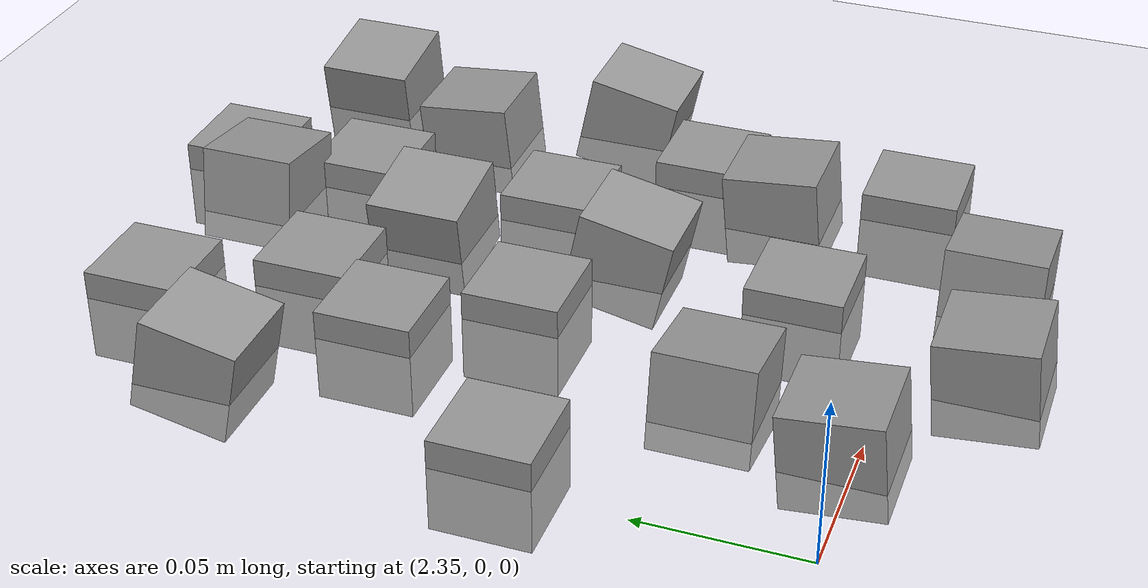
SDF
<sdf version="1.7">
 <world name="default">
  <model name="ground_plane">
   <static>1</static>
   <link name="link">
    <collision name="collision">
     <geometry><plane><normal>0 0 1</normal><size>100 100</size></plane></geometry>
     <surface><friction><ode><mu>100</mu><mu2>50</mu2></ode></friction></surface>
    </collision>
    <visual name="visual">
     <cast_shadows>0</cast_shadows>
     <geometry><plane><normal>0 0 1</normal><size>100 100</size></plane></geometry>
     <material>
      <script><uri>file://media/materials/scripts/gazebo.material</uri><name>Gazebo/Grey</name></script>
     </material>
    </visual>
   </link>
  </model>
  <model name="stone_road_4">
   <link name="link_0_clone_2_clone_2_clone_13_clone">
    <inertial>
     <mass>1</mass>
     <inertia>
      <ixx>0.166667</ixx>
      <ixy>0</ixy>
      <ixz>0</ixz>
      <iyy>0.166667</iyy>
      <iyz>0</iyz>
      <izz>0.166667</izz>
     </inertia>
    </inertial>
    <pose>0.138846 0.140956 0.003778 -0.1 0 0</pose>
    <kinematic>1</kinematic>
    <visual name="visual">
     <geometry><box><size>0.03 0.03 0.03</size></box></geometry>
     <material>
      <lighting>1</lighting>
      <script><uri>file://media/materials/scripts/gazebo.material</uri><name>Gazebo/Grey</name></script>
      <shader type="pixel"><normal_map>__default__</normal_map></shader>
      <ambient>0.3 0.3 0.3 1</ambient>
      <diffuse>0.7 0.7 0.7 1</diffuse>
      <specular>0.01 0.01 0.01 1</specular>
      <emissive>0 0 0 1</emissive>
     </material>
    </visual>
    <collision name="collision">
     <geometry><box><size>0.03 0.03 0.03</size></box></geometry>
     <surface>
      <friction>
       <ode><mu>1</mu><mu2>1</mu2><fdir1>0 0 0</fdir1><slip1>0</slip1><slip2>0</slip2></ode>
       <torsional>
        <coefficient>1</coefficient>
        <patch_radius>0</patch_radius>
        <surface_radius>0</surface_radius>
        <use_patch_radius>1</use_patch_radius>
        <ode><slip>0</slip></ode>
       </torsional>
      </friction>
      <bounce><restitution_coefficient>0</restitution_coefficient><threshold>1e+06</threshold></bounce>
      <contact>
       <collide_without_contact>0</collide_without_contact>
       <collide_without_contact_bitmask>1</collide_without_contact_bitmask>
       <collide_bitmask>1</collide_bitmask>
       <ode>
        <soft_cfm>0</soft_cfm>
        <soft_erp>0.2</soft_erp>
        <kp>1e+13</kp>
        <kd>1</kd>
        <max_vel>0.01</max_vel>
        <min_depth>0</min_depth>
       </ode>
       <bullet>
        <split_impulse>1</split_impulse>
        <split_impulse_penetration_threshold>-0.01</split_impulse_penetration_threshold>
        <soft_cfm>0</soft_cfm>
        <soft_erp>0.2</soft_erp>
        <kp>1e+13</kp>
        <kd>1</kd>
       </bullet>
      </contact>
     </surface>
    </collision>
   </link>
   <link name="link_0_clone_2_clone_2_clone_13_clone_clone">
    <inertial>
     <mass>1</mass>
     <inertia>
      <ixx>0.166667</ixx>
      <ixy>0</ixy>
      <ixz>0</ixz>
      <iyy>0.166667</iyy>
      <iyz>0</iyz>
      <izz>0.166667</izz>
     </inertia>
    </inertial>
    <pose>0.184456 0.108712 0.003778 -0.1 0 0</pose>
    <kinematic>1</kinematic>
    <visual name="visual">
     <geometry><box><size>0.03 0.03 0.03</size></box></geometry>
     <material>
      <lighting>1</lighting>
      <script><uri>file://media/materials/scripts/gazebo.material</uri><name>Gazebo/Grey</name></script>
      <shader type="pixel"><normal_map>__default__</normal_map></shader>
      <ambient>0.3 0.3 0.3 1</ambient>
      <diffuse>0.7 0.7 0.7 1</diffuse>
      <specular>0.01 0.01 0.01 1</specular>
      <emissive>0 0 0 1</emissive>
     </material>
    </visual>
    <collision name="collision">
     <geometry><box><size>0.03 0.03 0.03</size></box></geometry>
     <surface>
      <friction>
       <ode><mu>1</mu><mu2>1</mu2><fdir1>0 0 0</fdir1><slip1>0</slip1><slip2>0</slip2></ode>
       <torsional>
        <coefficient>1</coefficient>
        <patch_radius>0</patch_radius>
        <surface_radius>0</surface_radius>
        <use_patch_radius>1</use_patch_radius>
        <ode><slip>0</slip></ode>
       </torsional>
      </friction>
      <bounce><restitution_coefficient>0</restitution_coefficient><threshold>1e+06</threshold></bounce>
      <contact>
       <collide_without_contact>0</collide_without_contact>
       <collide_without_contact_bitmask>1</collide_without_contact_bitmask>
       <collide_bitmask>1</collide_bitmask>
       <ode>
        <soft_cfm>0</soft_cfm>
        <soft_erp>0.2</soft_erp>
        <kp>1e+13</kp>
        <kd>1</kd>
        <max_vel>0.01</max_vel>
        <min_depth>0</min_depth>
       </ode>
       <bullet>
        <split_impulse>1</split_impulse>
        <split_impulse_penetration_threshold>-0.01</split_impulse_penetration_threshold>
        <soft_cfm>0</soft_cfm>
        <soft_erp>0.2</soft_erp>
        <kp>1e+13</kp>
        <kd>1</kd>
       </bullet>
      </contact>
     </surface>
    </collision>
   </link>
   <link name="link_0_clone_2_clone_2_clone_13_clone_clone_16">
    <inertial>
     <mass>1</mass>
     <inertia>
      <ixx>0.166667</ixx>
      <ixy>0</ixy>
      <ixz>0</ixz>
      <iyy>0.166667</iyy>
      <iyz>0</iyz>
      <izz>0.166667</izz>
     </inertia>
    </inertial>
    <pose>0.108948 0.22849 -0.006222 0 -0 0</pose>
    <kinematic>1</kinematic>
    <visual name="visual">
     <geometry><box><size>0.03 0.03 0.03</size></box></geometry>
     <material>
      <lighting>1</lighting>
      <script><uri>file://media/materials/scripts/gazebo.material</uri><name>Gazebo/Grey</name></script>
      <shader type="pixel"><normal_map>__default__</normal_map></shader>
      <ambient>0.3 0.3 0.3 1</ambient>
      <diffuse>0.7 0.7 0.7 1</diffuse>
      <specular>0.01 0.01 0.01 1</specular>
      <emissive>0 0 0 1</emissive>
     </material>
    </visual>
    <collision name="collision">
     <geometry><box><size>0.03 0.03 0.03</size></box></geometry>
     <surface>
      <friction>
       <ode><mu>1</mu><mu2>1</mu2><fdir1>0 0 0</fdir1><slip1>0</slip1><slip2>0</slip2></ode>
       <torsional>
        <coefficient>1</coefficient>
        <patch_radius>0</patch_radius>
        <surface_radius>0</surface_radius>
        <use_patch_radius>1</use_patch_radius>
        <ode><slip>0</slip></ode>
       </torsional>
      </friction>
      <bounce><restitution_coefficient>0</restitution_coefficient><threshold>1e+06</threshold></bounce>
      <contact>
       <collide_without_contact>0</collide_without_contact>
       <collide_without_contact_bitmask>1</collide_without_contact_bitmask>
       <collide_bitmask>1</collide_bitmask>
       <ode>
        <soft_cfm>0</soft_cfm>
        <soft_erp>0.2</soft_erp>
        <kp>1e+13</kp>
        <kd>1</kd>
        <max_vel>0.01</max_vel>
        <min_depth>0</min_depth>
       </ode>
       <bullet>
        <split_impulse>1</split_impulse>
        <split_impulse_penetration_threshold>-0.01</split_impulse_penetration_threshold>
        <soft_cfm>0</soft_cfm>
        <soft_erp>0.2</soft_erp>
        <kp>1e+13</kp>
        <kd>1</kd>
       </bullet>
      </contact>
     </surface>
    </collision>
   </link>
   <link name="link_0_clone_2_clone_9">
    <inertial>
     <mass>1</mass>
     <inertia>
      <ixx>0.166667</ixx>
      <ixy>0</ixy>
      <ixz>0</ixz>
      <iyy>0.166667</iyy>
      <iyz>0</iyz>
      <izz>0.166667</izz>
     </inertia>
    </inertial>
    <pose>0.148876 0.179752 0.003778 0 0.15 0</pose>
    <kinematic>1</kinematic>
    <visual name="visual">
     <geometry><box><size>0.03 0.03 0.03</size></box></geometry>
     <material>
      <lighting>1</lighting>
      <script><uri>file://media/materials/scripts/gazebo.material</uri><name>Gazebo/Grey</name></script>
      <shader type="pixel"><normal_map>__default__</normal_map></shader>
      <ambient>0.3 0.3 0.3 1</ambient>
      <diffuse>0.7 0.7 0.7 1</diffuse>
      <specular>0.01 0.01 0.01 1</specular>
      <emissive>0 0 0 1</emissive>
     </material>
    </visual>
    <collision name="collision">
     <geometry><box><size>0.03 0.03 0.03</size></box></geometry>
     <surface>
      <friction>
       <ode><mu>1</mu><mu2>1</mu2><fdir1>0 0 0</fdir1><slip1>0</slip1><slip2>0</slip2></ode>
       <torsional>
        <coefficient>1</coefficient>
        <patch_radius>0</patch_radius>
        <surface_radius>0</surface_radius>
        <use_patch_radius>1</use_patch_radius>
        <ode><slip>0</slip></ode>
       </torsional>
      </friction>
      <bounce><restitution_coefficient>0</restitution_coefficient><threshold>1e+06</threshold></bounce>
      <contact>
       <collide_without_contact>0</collide_without_contact>
       <collide_without_contact_bitmask>1</collide_without_contact_bitmask>
       <collide_bitmask>1</collide_bitmask>
       <ode>
        <soft_cfm>0</soft_cfm>
        <soft_erp>0.2</soft_erp>
        <kp>1e+13</kp>
        <kd>1</kd>
        <max_vel>0.01</max_vel>
        <min_depth>0</min_depth>
       </ode>
       <bullet>
        <split_impulse>1</split_impulse>
        <split_impulse_penetration_threshold>-0.01</split_impulse_penetration_threshold>
        <soft_cfm>0</soft_cfm>
        <soft_erp>0.2</soft_erp>
        <kp>1e+13</kp>
        <kd>1</kd>
       </bullet>
      </contact>
     </surface>
    </collision>
   </link>
   <static>0</static>
   <pose>2.25857 -0.135925 -0 0 -0 0</pose>
  </model>
  <model name="stone_road_7">
   <link name="link_0_clone_0">
    <inertial>
     <mass>1</mass>
     <inertia>
      <ixx>0.166667</ixx>
      <ixy>0</ixy>
      <ixz>0</ixz>
      <iyy>0.166667</iyy>
      <iyz>0</iyz>
      <izz>0.166667</izz>
     </inertia>
    </inertial>
    <pose>-0.104982 -0.15412 0.003778 0.2 -0 0</pose>
    <kinematic>1</kinematic>
    <visual name="visual">
     <geometry><box><size>0.03 0.03 0.03</size></box></geometry>
     <material>
      <lighting>1</lighting>
      <script><uri>file://media/materials/scripts/gazebo.material</uri><name>Gazebo/Grey</name></script>
      <shader type="pixel"><normal_map>__default__</normal_map></shader>
      <ambient>0.3 0.3 0.3 1</ambient>
      <diffuse>0.7 0.7 0.7 1</diffuse>
      <specular>0.01 0.01 0.01 1</specular>
      <emissive>0 0 0 1</emissive>
     </material>
    </visual>
    <collision name="collision">
     <geometry><box><size>0.03 0.03 0.03</size></box></geometry>
     <surface>
      <friction>
       <ode><mu>1</mu><mu2>1</mu2><fdir1>0 0 0</fdir1><slip1>0</slip1><slip2>0</slip2></ode>
       <torsional>
        <coefficient>1</coefficient>
        <patch_radius>0</patch_radius>
        <surface_radius>0</surface_radius>
        <use_patch_radius>1</use_patch_radius>
        <ode><slip>0</slip></ode>
       </torsional>
      </friction>
      <bounce><restitution_coefficient>0</restitution_coefficient><threshold>1e+06</threshold></bounce>
      <contact>
       <collide_without_contact>0</collide_without_contact>
       <collide_without_contact_bitmask>1</collide_without_contact_bitmask>
       <collide_bitmask>1</collide_bitmask>
       <ode>
        <soft_cfm>0</soft_cfm>
        <soft_erp>0.2</soft_erp>
        <kp>1e+13</kp>
        <kd>1</kd>
        <max_vel>0.01</max_vel>
        <min_depth>0</min_depth>
       </ode>
       <bullet>
        <split_impulse>1</split_impulse>
        <split_impulse_penetration_threshold>-0.01</split_impulse_penetration_threshold>
        <soft_cfm>0</soft_cfm>
        <soft_erp>0.2</soft_erp>
        <kp>1e+13</kp>
        <kd>1</kd>
       </bullet>
      </contact>
     </surface>
    </collision>
   </link>
   <link name="link_0_clone_1">
    <inertial>
     <mass>1</mass>
     <inertia>
      <ixx>0.166667</ixx>
      <ixy>0</ixy>
      <ixz>0</ixz>
      <iyy>0.166667</iyy>
      <iyz>0</iyz>
      <izz>0.166667</izz>
     </inertia>
    </inertial>
    <pose>-0.022921 -0.129606 0.003778 0.2 -0 0</pose>
    <kinematic>1</kinematic>
    <visual name="visual">
     <geometry><box><size>0.03 0.03 0.03</size></box></geometry>
     <material>
      <lighting>1</lighting>
      <script><uri>file://media/materials/scripts/gazebo.material</uri><name>Gazebo/Grey</name></script>
      <shader type="pixel"><normal_map>__default__</normal_map></shader>
      <ambient>0.3 0.3 0.3 1</ambient>
      <diffuse>0.7 0.7 0.7 1</diffuse>
      <specular>0.01 0.01 0.01 1</specular>
      <emissive>0 0 0 1</emissive>
     </material>
    </visual>
    <collision name="collision">
     <geometry><box><size>0.03 0.03 0.03</size></box></geometry>
     <surface>
      <friction>
       <ode><mu>1</mu><mu2>1</mu2><fdir1>0 0 0</fdir1><slip1>0</slip1><slip2>0</slip2></ode>
       <torsional>
        <coefficient>1</coefficient>
        <patch_radius>0</patch_radius>
        <surface_radius>0</surface_radius>
        <use_patch_radius>1</use_patch_radius>
        <ode><slip>0</slip></ode>
       </torsional>
      </friction>
      <bounce><restitution_coefficient>0</restitution_coefficient><threshold>1e+06</threshold></bounce>
      <contact>
       <collide_without_contact>0</collide_without_contact>
       <collide_without_contact_bitmask>1</collide_without_contact_bitmask>
       <collide_bitmask>1</collide_bitmask>
       <ode>
        <soft_cfm>0</soft_cfm>
        <soft_erp>0.2</soft_erp>
        <kp>1e+13</kp>
        <kd>1</kd>
        <max_vel>0.01</max_vel>
        <min_depth>0</min_depth>
       </ode>
       <bullet>
        <split_impulse>1</split_impulse>
        <split_impulse_penetration_threshold>-0.01</split_impulse_penetration_threshold>
        <soft_cfm>0</soft_cfm>
        <soft_erp>0.2</soft_erp>
        <kp>1e+13</kp>
        <kd>1</kd>
       </bullet>
      </contact>
     </surface>
    </collision>
   </link>
   <link name="link_0_clone_2_clone">
    <inertial>
     <mass>1</mass>
     <inertia>
      <ixx>0.166667</ixx>
      <ixy>0</ixy>
      <ixz>0</ixz>
      <iyy>0.166667</iyy>
      <iyz>0</iyz>
      <izz>0.166667</izz>
     </inertia>
    </inertial>
    <pose>-0.10771 -0.03187 0.003778 0 0.15 0</pose>
    <kinematic>1</kinematic>
    <visual name="visual">
     <geometry><box><size>0.03 0.03 0.03</size></box></geometry>
     <material>
      <lighting>1</lighting>
      <script><uri>file://media/materials/scripts/gazebo.material</uri><name>Gazebo/Grey</name></script>
      <shader type="pixel"><normal_map>__default__</normal_map></shader>
      <ambient>0.3 0.3 0.3 1</ambient>
      <diffuse>0.7 0.7 0.7 1</diffuse>
      <specular>0.01 0.01 0.01 1</specular>
      <emissive>0 0 0 1</emissive>
     </material>
    </visual>
    <collision name="collision">
     <geometry><box><size>0.03 0.03 0.03</size></box></geometry>
     <surface>
      <friction>
       <ode><mu>1</mu><mu2>1</mu2><fdir1>0 0 0</fdir1><slip1>0</slip1><slip2>0</slip2></ode>
       <torsional>
        <coefficient>1</coefficient>
        <patch_radius>0</patch_radius>
        <surface_radius>0</surface_radius>
        <use_patch_radius>1</use_patch_radius>
        <ode><slip>0</slip></ode>
       </torsional>
      </friction>
      <bounce><restitution_coefficient>0</restitution_coefficient><threshold>1e+06</threshold></bounce>
      <contact>
       <collide_without_contact>0</collide_without_contact>
       <collide_without_contact_bitmask>1</collide_without_contact_bitmask>
       <collide_bitmask>1</collide_bitmask>
       <ode>
        <soft_cfm>0</soft_cfm>
        <soft_erp>0.2</soft_erp>
        <kp>1e+13</kp>
        <kd>1</kd>
        <max_vel>0.01</max_vel>
        <min_depth>0</min_depth>
       </ode>
       <bullet>
        <split_impulse>1</split_impulse>
        <split_impulse_penetration_threshold>-0.01</split_impulse_penetration_threshold>
        <soft_cfm>0</soft_cfm>
        <soft_erp>0.2</soft_erp>
        <kp>1e+13</kp>
        <kd>1</kd>
       </bullet>
      </contact>
     </surface>
    </collision>
   </link>
   <link name="link_0_clone_2_clone_2_clone_0">
    <inertial>
     <mass>1</mass>
     <inertia>
      <ixx>0.166667</ixx>
      <ixy>0</ixy>
      <ixz>0</ixz>
      <iyy>0.166667</iyy>
      <iyz>0</iyz>
      <izz>0.166667</izz>
     </inertia>
    </inertial>
    <pose>-0.032874 -0.039714 0.003778 0 -0.15 0</pose>
    <kinematic>1</kinematic>
    <visual name="visual">
     <geometry><box><size>0.03 0.03 0.03</size></box></geometry>
     <material>
      <lighting>1</lighting>
      <script><uri>file://media/materials/scripts/gazebo.material</uri><name>Gazebo/Grey</name></script>
      <shader type="pixel"><normal_map>__default__</normal_map></shader>
      <ambient>0.3 0.3 0.3 1</ambient>
      <diffuse>0.7 0.7 0.7 1</diffuse>
      <specular>0.01 0.01 0.01 1</specular>
      <emissive>0 0 0 1</emissive>
     </material>
    </visual>
    <collision name="collision">
     <geometry><box><size>0.03 0.03 0.03</size></box></geometry>
     <surface>
      <friction>
       <ode><mu>1</mu><mu2>1</mu2><fdir1>0 0 0</fdir1><slip1>0</slip1><slip2>0</slip2></ode>
       <torsional>
        <coefficient>1</coefficient>
        <patch_radius>0</patch_radius>
        <surface_radius>0</surface_radius>
        <use_patch_radius>1</use_patch_radius>
        <ode><slip>0</slip></ode>
       </torsional>
      </friction>
      <bounce><restitution_coefficient>0</restitution_coefficient><threshold>1e+06</threshold></bounce>
      <contact>
       <collide_without_contact>0</collide_without_contact>
       <collide_without_contact_bitmask>1</collide_without_contact_bitmask>
       <collide_bitmask>1</collide_bitmask>
       <ode>
        <soft_cfm>0</soft_cfm>
        <soft_erp>0.2</soft_erp>
        <kp>1e+13</kp>
        <kd>1</kd>
        <max_vel>0.01</max_vel>
        <min_depth>0</min_depth>
       </ode>
       <bullet>
        <split_impulse>1</split_impulse>
        <split_impulse_penetration_threshold>-0.01</split_impulse_penetration_threshold>
        <soft_cfm>0</soft_cfm>
        <soft_erp>0.2</soft_erp>
        <kp>1e+13</kp>
        <kd>1</kd>
       </bullet>
      </contact>
     </surface>
    </collision>
   </link>
   <link name="link_0_clone_2_clone_2_clone_13_clone_clone_16_clone_10">
    <inertial>
     <mass>1</mass>
     <inertia>
      <ixx>0.166667</ixx>
      <ixy>0</ixy>
      <ixz>0</ixz>
      <iyy>0.166667</iyy>
      <iyz>0</iyz>
      <izz>0.166667</izz>
     </inertia>
    </inertial>
    <pose>-0.082186 -0.05781 -0.006222 0 -0 0</pose>
    <kinematic>1</kinematic>
    <visual name="visual">
     <geometry><box><size>0.03 0.03 0.03</size></box></geometry>
     <material>
      <lighting>1</lighting>
      <script><uri>file://media/materials/scripts/gazebo.material</uri><name>Gazebo/Grey</name></script>
      <shader type="pixel"><normal_map>__default__</normal_map></shader>
      <ambient>0.3 0.3 0.3 1</ambient>
      <diffuse>0.7 0.7 0.7 1</diffuse>
      <specular>0.01 0.01 0.01 1</specular>
      <emissive>0 0 0 1</emissive>
     </material>
    </visual>
    <collision name="collision">
     <geometry><box><size>0.03 0.03 0.03</size></box></geometry>
     <surface>
      <friction>
       <ode><mu>1</mu><mu2>1</mu2><fdir1>0 0 0</fdir1><slip1>0</slip1><slip2>0</slip2></ode>
       <torsional>
        <coefficient>1</coefficient>
        <patch_radius>0</patch_radius>
        <surface_radius>0</surface_radius>
        <use_patch_radius>1</use_patch_radius>
        <ode><slip>0</slip></ode>
       </torsional>
      </friction>
      <bounce><restitution_coefficient>0</restitution_coefficient><threshold>1e+06</threshold></bounce>
      <contact>
       <collide_without_contact>0</collide_without_contact>
       <collide_without_contact_bitmask>1</collide_without_contact_bitmask>
       <collide_bitmask>1</collide_bitmask>
       <ode>
        <soft_cfm>0</soft_cfm>
        <soft_erp>0.2</soft_erp>
        <kp>1e+13</kp>
        <kd>1</kd>
        <max_vel>0.01</max_vel>
        <min_depth>0</min_depth>
       </ode>
       <bullet>
        <split_impulse>1</split_impulse>
        <split_impulse_penetration_threshold>-0.01</split_impulse_penetration_threshold>
        <soft_cfm>0</soft_cfm>
        <soft_erp>0.2</soft_erp>
        <kp>1e+13</kp>
        <kd>1</kd>
       </bullet>
      </contact>
     </surface>
    </collision>
   </link>
   <link name="link_0_clone_2_clone_2_clone_13_clone_clone_16_clone_11">
    <inertial>
     <mass>1</mass>
     <inertia>
      <ixx>0.166667</ixx>
      <ixy>0</ixy>
      <ixz>0</ixz>
      <iyy>0.166667</iyy>
      <iyz>0</iyz>
      <izz>0.166667</izz>
     </inertia>
    </inertial>
    <pose>-0.141844 -0.066911 -0.006222 0 -0 0</pose>
    <kinematic>1</kinematic>
    <visual name="visual">
     <geometry><box><size>0.03 0.03 0.03</size></box></geometry>
     <material>
      <lighting>1</lighting>
      <script><uri>file://media/materials/scripts/gazebo.material</uri><name>Gazebo/Grey</name></script>
      <shader type="pixel"><normal_map>__default__</normal_map></shader>
      <ambient>0.3 0.3 0.3 1</ambient>
      <diffuse>0.7 0.7 0.7 1</diffuse>
      <specular>0.01 0.01 0.01 1</specular>
      <emissive>0 0 0 1</emissive>
     </material>
    </visual>
    <collision name="collision">
     <geometry><box><size>0.03 0.03 0.03</size></box></geometry>
     <surface>
      <friction>
       <ode><mu>1</mu><mu2>1</mu2><fdir1>0 0 0</fdir1><slip1>0</slip1><slip2>0</slip2></ode>
       <torsional>
        <coefficient>1</coefficient>
        <patch_radius>0</patch_radius>
        <surface_radius>0</surface_radius>
        <use_patch_radius>1</use_patch_radius>
        <ode><slip>0</slip></ode>
       </torsional>
      </friction>
      <bounce><restitution_coefficient>0</restitution_coefficient><threshold>1e+06</threshold></bounce>
      <contact>
       <collide_without_contact>0</collide_without_contact>
       <collide_without_contact_bitmask>1</collide_without_contact_bitmask>
       <collide_bitmask>1</collide_bitmask>
       <ode>
        <soft_cfm>0</soft_cfm>
        <soft_erp>0.2</soft_erp>
        <kp>1e+13</kp>
        <kd>1</kd>
        <max_vel>0.01</max_vel>
        <min_depth>0</min_depth>
       </ode>
       <bullet>
        <split_impulse>1</split_impulse>
        <split_impulse_penetration_threshold>-0.01</split_impulse_penetration_threshold>
        <soft_cfm>0</soft_cfm>
        <soft_erp>0.2</soft_erp>
        <kp>1e+13</kp>
        <kd>1</kd>
       </bullet>
      </contact>
     </surface>
    </collision>
   </link>
   <link name="link_0_clone_2_clone_2_clone_13_clone_clone_16_clone_12">
    <inertial>
     <mass>1</mass>
     <inertia>
      <ixx>0.166667</ixx>
      <ixy>0</ixy>
      <ixz>0</ixz>
      <iyy>0.166667</iyy>
      <iyz>0</iyz>
      <izz>0.166667</izz>
     </inertia>
    </inertial>
    <pose>-0.164908 -0.022947 -0.006222 0 -0 0</pose>
    <kinematic>1</kinematic>
    <visual name="visual">
     <geometry><box><size>0.03 0.03 0.03</size></box></geometry>
     <material>
      <lighting>1</lighting>
      <script><uri>file://media/materials/scripts/gazebo.material</uri><name>Gazebo/Grey</name></script>
      <shader type="pixel"><normal_map>__default__</normal_map></shader>
      <ambient>0.3 0.3 0.3 1</ambient>
      <diffuse>0.7 0.7 0.7 1</diffuse>
      <specular>0.01 0.01 0.01 1</specular>
      <emissive>0 0 0 1</emissive>
     </material>
    </visual>
    <collision name="collision">
     <geometry><box><size>0.03 0.03 0.03</size></box></geometry>
     <surface>
      <friction>
       <ode><mu>1</mu><mu2>1</mu2><fdir1>0 0 0</fdir1><slip1>0</slip1><slip2>0</slip2></ode>
       <torsional>
        <coefficient>1</coefficient>
        <patch_radius>0</patch_radius>
        <surface_radius>0</surface_radius>
        <use_patch_radius>1</use_patch_radius>
        <ode><slip>0</slip></ode>
       </torsional>
      </friction>
      <bounce><restitution_coefficient>0</restitution_coefficient><threshold>1e+06</threshold></bounce>
      <contact>
       <collide_without_contact>0</collide_without_contact>
       <collide_without_contact_bitmask>1</collide_without_contact_bitmask>
       <collide_bitmask>1</collide_bitmask>
       <ode>
        <soft_cfm>0</soft_cfm>
        <soft_erp>0.2</soft_erp>
        <kp>1e+13</kp>
        <kd>1</kd>
        <max_vel>0.01</max_vel>
        <min_depth>0</min_depth>
       </ode>
       <bullet>
        <split_impulse>1</split_impulse>
        <split_impulse_penetration_threshold>-0.01</split_impulse_penetration_threshold>
        <soft_cfm>0</soft_cfm>
        <soft_erp>0.2</soft_erp>
        <kp>1e+13</kp>
        <kd>1</kd>
       </bullet>
      </contact>
     </surface>
    </collision>
   </link>
   <link name="link_0_clone_2_clone_2_clone_13_clone_clone_16_clone_27">
    <inertial>
     <mass>1</mass>
     <inertia>
      <ixx>0.166667</ixx>
      <ixy>0</ixy>
      <ixz>0</ixz>
      <iyy>0.166667</iyy>
      <iyz>0</iyz>
      <izz>0.166667</izz>
     </inertia>
    </inertial>
    <pose>-0.137316 -0.132225 -0.006222 0 -0 0</pose>
    <kinematic>1</kinematic>
    <visual name="visual">
     <geometry><box><size>0.03 0.03 0.03</size></box></geometry>
     <material>
      <lighting>1</lighting>
      <script><uri>file://media/materials/scripts/gazebo.material</uri><name>Gazebo/Grey</name></script>
      <shader type="pixel"><normal_map>__default__</normal_map></shader>
      <ambient>0.3 0.3 0.3 1</ambient>
      <diffuse>0.7 0.7 0.7 1</diffuse>
      <specular>0.01 0.01 0.01 1</specular>
      <emissive>0 0 0 1</emissive>
     </material>
    </visual>
    <collision name="collision">
     <geometry><box><size>0.03 0.03 0.03</size></box></geometry>
     <surface>
      <friction>
       <ode><mu>1</mu><mu2>1</mu2><fdir1>0 0 0</fdir1><slip1>0</slip1><slip2>0</slip2></ode>
       <torsional>
        <coefficient>1</coefficient>
        <patch_radius>0</patch_radius>
        <surface_radius>0</surface_radius>
        <use_patch_radius>1</use_patch_radius>
        <ode><slip>0</slip></ode>
       </torsional>
      </friction>
      <bounce><restitution_coefficient>0</restitution_coefficient><threshold>1e+06</threshold></bounce>
      <contact>
       <collide_without_contact>0</collide_without_contact>
       <collide_without_contact_bitmask>1</collide_without_contact_bitmask>
       <collide_bitmask>1</collide_bitmask>
       <ode>
        <soft_cfm>0</soft_cfm>
        <soft_erp>0.2</soft_erp>
        <kp>1e+13</kp>
        <kd>1</kd>
        <max_vel>0.01</max_vel>
        <min_depth>0</min_depth>
       </ode>
       <bullet>
        <split_impulse>1</split_impulse>
        <split_impulse_penetration_threshold>-0.01</split_impulse_penetration_threshold>
        <soft_cfm>0</soft_cfm>
        <soft_erp>0.2</soft_erp>
        <kp>1e+13</kp>
        <kd>1</kd>
       </bullet>
      </contact>
     </surface>
    </collision>
   </link>
   <link name="link_0_clone_2_clone_2_clone_13_clone_clone_16_clone_28">
    <inertial>
     <mass>1</mass>
     <inertia>
      <ixx>0.166667</ixx>
      <ixy>0</ixy>
      <ixz>0</ixz>
      <iyy>0.166667</iyy>
      <iyz>0</iyz>
      <izz>0.166667</izz>
     </inertia>
    </inertial>
    <pose>-0.10708 -0.209042 -0.006222 0 -0 0</pose>
    <kinematic>1</kinematic>
    <visual name="visual">
     <geometry><box><size>0.03 0.03 0.03</size></box></geometry>
     <material>
      <lighting>1</lighting>
      <script><uri>file://media/materials/scripts/gazebo.material</uri><name>Gazebo/Grey</name></script>
      <shader type="pixel"><normal_map>__default__</normal_map></shader>
      <ambient>0.3 0.3 0.3 1</ambient>
      <diffuse>0.7 0.7 0.7 1</diffuse>
      <specular>0.01 0.01 0.01 1</specular>
      <emissive>0 0 0 1</emissive>
     </material>
    </visual>
    <collision name="collision">
     <geometry><box><size>0.03 0.03 0.03</size></box></geometry>
     <surface>
      <friction>
       <ode><mu>1</mu><mu2>1</mu2><fdir1>0 0 0</fdir1><slip1>0</slip1><slip2>0</slip2></ode>
       <torsional>
        <coefficient>1</coefficient>
        <patch_radius>0</patch_radius>
        <surface_radius>0</surface_radius>
        <use_patch_radius>1</use_patch_radius>
        <ode><slip>0</slip></ode>
       </torsional>
      </friction>
      <bounce><restitution_coefficient>0</restitution_coefficient><threshold>1e+06</threshold></bounce>
      <contact>
       <collide_without_contact>0</collide_without_contact>
       <collide_without_contact_bitmask>1</collide_without_contact_bitmask>
       <collide_bitmask>1</collide_bitmask>
       <ode>
        <soft_cfm>0</soft_cfm>
        <soft_erp>0.2</soft_erp>
        <kp>1e+13</kp>
        <kd>1</kd>
        <max_vel>0.01</max_vel>
        <min_depth>0</min_depth>
       </ode>
       <bullet>
        <split_impulse>1</split_impulse>
        <split_impulse_penetration_threshold>-0.01</split_impulse_penetration_threshold>
        <soft_cfm>0</soft_cfm>
        <soft_erp>0.2</soft_erp>
        <kp>1e+13</kp>
        <kd>1</kd>
       </bullet>
      </contact>
     </surface>
    </collision>
   </link>
   <link name="link_0_clone_2_clone_2_clone_13_clone_clone_16_clone_29">
    <inertial>
     <mass>1</mass>
     <inertia>
      <ixx>0.166667</ixx>
      <ixy>0</ixy>
      <ixz>0</ixz>
      <iyy>0.166667</iyy>
      <iyz>0</iyz>
      <izz>0.166667</izz>
     </inertia>
    </inertial>
    <pose>-0.042964 -0.229632 -0.006222 0 -0 0</pose>
    <kinematic>1</kinematic>
    <visual name="visual">
     <geometry><box><size>0.03 0.03 0.03</size></box></geometry>
     <material>
      <lighting>1</lighting>
      <script><uri>file://media/materials/scripts/gazebo.material</uri><name>Gazebo/Grey</name></script>
      <shader type="pixel"><normal_map>__default__</normal_map></shader>
      <ambient>0.3 0.3 0.3 1</ambient>
      <diffuse>0.7 0.7 0.7 1</diffuse>
      <specular>0.01 0.01 0.01 1</specular>
      <emissive>0 0 0 1</emissive>
     </material>
    </visual>
    <collision name="collision">
     <geometry><box><size>0.03 0.03 0.03</size></box></geometry>
     <surface>
      <friction>
       <ode><mu>1</mu><mu2>1</mu2><fdir1>0 0 0</fdir1><slip1>0</slip1><slip2>0</slip2></ode>
       <torsional>
        <coefficient>1</coefficient>
        <patch_radius>0</patch_radius>
        <surface_radius>0</surface_radius>
        <use_patch_radius>1</use_patch_radius>
        <ode><slip>0</slip></ode>
       </torsional>
      </friction>
      <bounce><restitution_coefficient>0</restitution_coefficient><threshold>1e+06</threshold></bounce>
      <contact>
       <collide_without_contact>0</collide_without_contact>
       <collide_without_contact_bitmask>1</collide_without_contact_bitmask>
       <collide_bitmask>1</collide_bitmask>
       <ode>
        <soft_cfm>0</soft_cfm>
        <soft_erp>0.2</soft_erp>
        <kp>1e+13</kp>
        <kd>1</kd>
        <max_vel>0.01</max_vel>
        <min_depth>0</min_depth>
       </ode>
       <bullet>
        <split_impulse>1</split_impulse>
        <split_impulse_penetration_threshold>-0.01</split_impulse_penetration_threshold>
        <soft_cfm>0</soft_cfm>
        <soft_erp>0.2</soft_erp>
        <kp>1e+13</kp>
        <kd>1</kd>
       </bullet>
      </contact>
     </surface>
    </collision>
   </link>
   <link name="link_0_clone_2_clone_2_clone_13_clone_clone_16_clone_30">
    <inertial>
     <mass>1</mass>
     <inertia>
      <ixx>0.166667</ixx>
      <ixy>0</ixy>
      <ixz>0</ixz>
      <iyy>0.166667</iyy>
      <iyz>0</iyz>
      <izz>0.166667</izz>
     </inertia>
    </inertial>
    <pose>-0.160879 -0.095951 -0.006222 0 -0 0</pose>
    <kinematic>1</kinematic>
    <visual name="visual">
     <geometry><box><size>0.03 0.03 0.03</size></box></geometry>
     <material>
      <lighting>1</lighting>
      <script><uri>file://media/materials/scripts/gazebo.material</uri><name>Gazebo/Grey</name></script>
      <shader type="pixel"><normal_map>__default__</normal_map></shader>
      <ambient>0.3 0.3 0.3 1</ambient>
      <diffuse>0.7 0.7 0.7 1</diffuse>
      <specular>0.01 0.01 0.01 1</specular>
      <emissive>0 0 0 1</emissive>
     </material>
    </visual>
    <collision name="collision">
     <geometry><box><size>0.03 0.03 0.03</size></box></geometry>
     <surface>
      <friction>
       <ode><mu>1</mu><mu2>1</mu2><fdir1>0 0 0</fdir1><slip1>0</slip1><slip2>0</slip2></ode>
       <torsional>
        <coefficient>1</coefficient>
        <patch_radius>0</patch_radius>
        <surface_radius>0</surface_radius>
        <use_patch_radius>1</use_patch_radius>
        <ode><slip>0</slip></ode>
       </torsional>
      </friction>
      <bounce><restitution_coefficient>0</restitution_coefficient><threshold>1e+06</threshold></bounce>
      <contact>
       <collide_without_contact>0</collide_without_contact>
       <collide_without_contact_bitmask>1</collide_without_contact_bitmask>
       <collide_bitmask>1</collide_bitmask>
       <ode>
        <soft_cfm>0</soft_cfm>
        <soft_erp>0.2</soft_erp>
        <kp>1e+13</kp>
        <kd>1</kd>
        <max_vel>0.01</max_vel>
        <min_depth>0</min_depth>
       </ode>
       <bullet>
        <split_impulse>1</split_impulse>
        <split_impulse_penetration_threshold>-0.01</split_impulse_penetration_threshold>
        <soft_cfm>0</soft_cfm>
        <soft_erp>0.2</soft_erp>
        <kp>1e+13</kp>
        <kd>1</kd>
       </bullet>
      </contact>
     </surface>
    </collision>
   </link>
   <link name="link_0_clone_2_clone_2_clone_13_clone_clone_16_clone_5">
    <inertial>
     <mass>1</mass>
     <inertia>
      <ixx>0.166667</ixx>
      <ixy>0</ixy>
      <ixz>0</ixz>
      <iyy>0.166667</iyy>
      <iyz>0</iyz>
      <izz>0.166667</izz>
     </inertia>
    </inertial>
    <pose>-0.086674 -0.014784 -0.006222 0 -0 0</pose>
    <kinematic>1</kinematic>
    <visual name="visual">
     <geometry><box><size>0.03 0.03 0.03</size></box></geometry>
     <material>
      <lighting>1</lighting>
      <script><uri>file://media/materials/scripts/gazebo.material</uri><name>Gazebo/Grey</name></script>
      <shader type="pixel"><normal_map>__default__</normal_map></shader>
      <ambient>0.3 0.3 0.3 1</ambient>
      <diffuse>0.7 0.7 0.7 1</diffuse>
      <specular>0.01 0.01 0.01 1</specular>
      <emissive>0 0 0 1</emissive>
     </material>
    </visual>
    <collision name="collision">
     <geometry><box><size>0.03 0.03 0.03</size></box></geometry>
     <surface>
      <friction>
       <ode><mu>1</mu><mu2>1</mu2><fdir1>0 0 0</fdir1><slip1>0</slip1><slip2>0</slip2></ode>
       <torsional>
        <coefficient>1</coefficient>
        <patch_radius>0</patch_radius>
        <surface_radius>0</surface_radius>
        <use_patch_radius>1</use_patch_radius>
        <ode><slip>0</slip></ode>
       </torsional>
      </friction>
      <bounce><restitution_coefficient>0</restitution_coefficient><threshold>1e+06</threshold></bounce>
      <contact>
       <collide_without_contact>0</collide_without_contact>
       <collide_without_contact_bitmask>1</collide_without_contact_bitmask>
       <collide_bitmask>1</collide_bitmask>
       <ode>
        <soft_cfm>0</soft_cfm>
        <soft_erp>0.2</soft_erp>
        <kp>1e+13</kp>
        <kd>1</kd>
        <max_vel>0.01</max_vel>
        <min_depth>0</min_depth>
       </ode>
       <bullet>
        <split_impulse>1</split_impulse>
        <split_impulse_penetration_threshold>-0.01</split_impulse_penetration_threshold>
        <soft_cfm>0</soft_cfm>
        <soft_erp>0.2</soft_erp>
        <kp>1e+13</kp>
        <kd>1</kd>
       </bullet>
      </contact>
     </surface>
    </collision>
   </link>
   <link name="link_0_clone_2_clone_2_clone_13_clone_clone_16_clone_8">
    <inertial>
     <mass>1</mass>
     <inertia>
      <ixx>0.166667</ixx>
      <ixy>0</ixy>
      <ixz>0</ixz>
      <iyy>0.166667</iyy>
      <iyz>0</iyz>
      <izz>0.166667</izz>
     </inertia>
    </inertial>
    <pose>-0.045715 -0.162471 -0.006222 0 -0 0</pose>
    <kinematic>1</kinematic>
    <visual name="visual">
     <geometry><box><size>0.03 0.03 0.03</size></box></geometry>
     <material>
      <lighting>1</lighting>
      <script><uri>file://media/materials/scripts/gazebo.material</uri><name>Gazebo/Grey</name></script>
      <shader type="pixel"><normal_map>__default__</normal_map></shader>
      <ambient>0.3 0.3 0.3 1</ambient>
      <diffuse>0.7 0.7 0.7 1</diffuse>
      <specular>0.01 0.01 0.01 1</specular>
      <emissive>0 0 0 1</emissive>
     </material>
    </visual>
    <collision name="collision">
     <geometry><box><size>0.03 0.03 0.03</size></box></geometry>
     <surface>
      <friction>
       <ode><mu>1</mu><mu2>1</mu2><fdir1>0 0 0</fdir1><slip1>0</slip1><slip2>0</slip2></ode>
       <torsional>
        <coefficient>1</coefficient>
        <patch_radius>0</patch_radius>
        <surface_radius>0</surface_radius>
        <use_patch_radius>1</use_patch_radius>
        <ode><slip>0</slip></ode>
       </torsional>
      </friction>
      <bounce><restitution_coefficient>0</restitution_coefficient><threshold>1e+06</threshold></bounce>
      <contact>
       <collide_without_contact>0</collide_without_contact>
       <collide_without_contact_bitmask>1</collide_without_contact_bitmask>
       <collide_bitmask>1</collide_bitmask>
       <ode>
        <soft_cfm>0</soft_cfm>
        <soft_erp>0.2</soft_erp>
        <kp>1e+13</kp>
        <kd>1</kd>
        <max_vel>0.01</max_vel>
        <min_depth>0</min_depth>
       </ode>
       <bullet>
        <split_impulse>1</split_impulse>
        <split_impulse_penetration_threshold>-0.01</split_impulse_penetration_threshold>
        <soft_cfm>0</soft_cfm>
        <soft_erp>0.2</soft_erp>
        <kp>1e+13</kp>
        <kd>1</kd>
       </bullet>
      </contact>
     </surface>
    </collision>
   </link>
   <link name="link_0_clone_2_clone_2_clone_13_clone_clone_16_clone_9">
    <inertial>
     <mass>1</mass>
     <inertia>
      <ixx>0.166667</ixx>
      <ixy>0</ixy>
      <ixz>0</ixz>
      <iyy>0.166667</iyy>
      <iyz>0</iyz>
      <izz>0.166667</izz>
     </inertia>
    </inertial>
    <pose>-0.081689 -0.122641 -0.006222 0 -0 0</pose>
    <kinematic>1</kinematic>
    <visual name="visual">
     <geometry><box><size>0.03 0.03 0.03</size></box></geometry>
     <material>
      <lighting>1</lighting>
      <script><uri>file://media/materials/scripts/gazebo.material</uri><name>Gazebo/Grey</name></script>
      <shader type="pixel"><normal_map>__default__</normal_map></shader>
      <ambient>0.3 0.3 0.3 1</ambient>
      <diffuse>0.7 0.7 0.7 1</diffuse>
      <specular>0.01 0.01 0.01 1</specular>
      <emissive>0 0 0 1</emissive>
     </material>
    </visual>
    <collision name="collision">
     <geometry><box><size>0.03 0.03 0.03</size></box></geometry>
     <surface>
      <friction>
       <ode><mu>1</mu><mu2>1</mu2><fdir1>0 0 0</fdir1><slip1>0</slip1><slip2>0</slip2></ode>
       <torsional>
        <coefficient>1</coefficient>
        <patch_radius>0</patch_radius>
        <surface_radius>0</surface_radius>
        <use_patch_radius>1</use_patch_radius>
        <ode><slip>0</slip></ode>
       </torsional>
      </friction>
      <bounce><restitution_coefficient>0</restitution_coefficient><threshold>1e+06</threshold></bounce>
      <contact>
       <collide_without_contact>0</collide_without_contact>
       <collide_without_contact_bitmask>1</collide_without_contact_bitmask>
       <collide_bitmask>1</collide_bitmask>
       <ode>
        <soft_cfm>0</soft_cfm>
        <soft_erp>0.2</soft_erp>
        <kp>1e+13</kp>
        <kd>1</kd>
        <max_vel>0.01</max_vel>
        <min_depth>0</min_depth>
       </ode>
       <bullet>
        <split_impulse>1</split_impulse>
        <split_impulse_penetration_threshold>-0.01</split_impulse_penetration_threshold>
        <soft_cfm>0</soft_cfm>
        <soft_erp>0.2</soft_erp>
        <kp>1e+13</kp>
        <kd>1</kd>
       </bullet>
      </contact>
     </surface>
    </collision>
   </link>
   <link name="link_0_clone_2_clone_2_clone_13_clone_clone_8">
    <inertial>
     <mass>1</mass>
     <inertia>
      <ixx>0.166667</ixx>
      <ixy>0</ixy>
      <ixz>0</ixz>
      <iyy>0.166667</iyy>
      <iyz>0</iyz>
      <izz>0.166667</izz>
     </inertia>
    </inertial>
    <pose>-0.051207 -0.083778 0.003778 -0.1 0 0</pose>
    <kinematic>1</kinematic>
    <visual name="visual">
     <geometry><box><size>0.03 0.03 0.03</size></box></geometry>
     <material>
      <lighting>1</lighting>
      <script><uri>file://media/materials/scripts/gazebo.material</uri><name>Gazebo/Grey</name></script>
      <shader type="pixel"><normal_map>__default__</normal_map></shader>
      <ambient>0.3 0.3 0.3 1</ambient>
      <diffuse>0.7 0.7 0.7 1</diffuse>
      <specular>0.01 0.01 0.01 1</specular>
      <emissive>0 0 0 1</emissive>
     </material>
    </visual>
    <collision name="collision">
     <geometry><box><size>0.03 0.03 0.03</size></box></geometry>
     <surface>
      <friction>
       <ode><mu>1</mu><mu2>1</mu2><fdir1>0 0 0</fdir1><slip1>0</slip1><slip2>0</slip2></ode>
       <torsional>
        <coefficient>1</coefficient>
        <patch_radius>0</patch_radius>
        <surface_radius>0</surface_radius>
        <use_patch_radius>1</use_patch_radius>
        <ode><slip>0</slip></ode>
       </torsional>
      </friction>
      <bounce><restitution_coefficient>0</restitution_coefficient><threshold>1e+06</threshold></bounce>
      <contact>
       <collide_without_contact>0</collide_without_contact>
       <collide_without_contact_bitmask>1</collide_without_contact_bitmask>
       <collide_bitmask>1</collide_bitmask>
       <ode>
        <soft_cfm>0</soft_cfm>
        <soft_erp>0.2</soft_erp>
        <kp>1e+13</kp>
        <kd>1</kd>
        <max_vel>0.01</max_vel>
        <min_depth>0</min_depth>
       </ode>
       <bullet>
        <split_impulse>1</split_impulse>
        <split_impulse_penetration_threshold>-0.01</split_impulse_penetration_threshold>
        <soft_cfm>0</soft_cfm>
        <soft_erp>0.2</soft_erp>
        <kp>1e+13</kp>
        <kd>1</kd>
       </bullet>
      </contact>
     </surface>
    </collision>
   </link>
   <link name="link_0_clone_2_clone_2_clone_13_clone_clone_9">
    <inertial>
     <mass>1</mass>
     <inertia>
      <ixx>0.166667</ixx>
      <ixy>0</ixy>
      <ixz>0</ixz>
      <iyy>0.166667</iyy>
      <iyz>0</iyz>
      <izz>0.166667</izz>
     </inertia>
    </inertial>
    <pose>-0.062692 -0.190617 0.003778 -0.1 0 0</pose>
    <kinematic>1</kinematic>
    <visual name="visual">
     <geometry><box><size>0.03 0.03 0.03</size></box></geometry>
     <material>
      <lighting>1</lighting>
      <script><uri>file://media/materials/scripts/gazebo.material</uri><name>Gazebo/Grey</name></script>
      <shader type="pixel"><normal_map>__default__</normal_map></shader>
      <ambient>0.3 0.3 0.3 1</ambient>
      <diffuse>0.7 0.7 0.7 1</diffuse>
      <specular>0.01 0.01 0.01 1</specular>
      <emissive>0 0 0 1</emissive>
     </material>
    </visual>
    <collision name="collision">
     <geometry><box><size>0.03 0.03 0.03</size></box></geometry>
     <surface>
      <friction>
       <ode><mu>1</mu><mu2>1</mu2><fdir1>0 0 0</fdir1><slip1>0</slip1><slip2>0</slip2></ode>
       <torsional>
        <coefficient>1</coefficient>
        <patch_radius>0</patch_radius>
        <surface_radius>0</surface_radius>
        <use_patch_radius>1</use_patch_radius>
        <ode><slip>0</slip></ode>
       </torsional>
      </friction>
      <bounce><restitution_coefficient>0</restitution_coefficient><threshold>1e+06</threshold></bounce>
      <contact>
       <collide_without_contact>0</collide_without_contact>
       <collide_without_contact_bitmask>1</collide_without_contact_bitmask>
       <collide_bitmask>1</collide_bitmask>
       <ode>
        <soft_cfm>0</soft_cfm>
        <soft_erp>0.2</soft_erp>
        <kp>1e+13</kp>
        <kd>1</kd>
        <max_vel>0.01</max_vel>
        <min_depth>0</min_depth>
       </ode>
       <bullet>
        <split_impulse>1</split_impulse>
        <split_impulse_penetration_threshold>-0.01</split_impulse_penetration_threshold>
        <soft_cfm>0</soft_cfm>
        <soft_erp>0.2</soft_erp>
        <kp>1e+13</kp>
        <kd>1</kd>
       </bullet>
      </contact>
     </surface>
    </collision>
   </link>
   <link name="link_0_clone_2_clone_2_clone_3">
    <inertial>
     <mass>1</mass>
     <inertia>
      <ixx>0.166667</ixx>
      <ixy>0</ixy>
      <ixz>0</ixz>
      <iyy>0.166667</iyy>
      <iyz>0</iyz>
      <izz>0.166667</izz>
     </inertia>
    </inertial>
    <pose>-0.110514 -0.090915 0.003778 0 -0.15 0</pose>
    <kinematic>1</kinematic>
    <visual name="visual">
     <geometry><box><size>0.03 0.03 0.03</size></box></geometry>
     <material>
      <lighting>1</lighting>
      <script><uri>file://media/materials/scripts/gazebo.material</uri><name>Gazebo/Grey</name></script>
      <shader type="pixel"><normal_map>__default__</normal_map></shader>
      <ambient>0.3 0.3 0.3 1</ambient>
      <diffuse>0.7 0.7 0.7 1</diffuse>
      <specular>0.01 0.01 0.01 1</specular>
      <emissive>0 0 0 1</emissive>
     </material>
    </visual>
    <collision name="collision">
     <geometry><box><size>0.03 0.03 0.03</size></box></geometry>
     <surface>
      <friction>
       <ode><mu>1</mu><mu2>1</mu2><fdir1>0 0 0</fdir1><slip1>0</slip1><slip2>0</slip2></ode>
       <torsional>
        <coefficient>1</coefficient>
        <patch_radius>0</patch_radius>
        <surface_radius>0</surface_radius>
        <use_patch_radius>1</use_patch_radius>
        <ode><slip>0</slip></ode>
       </torsional>
      </friction>
      <bounce><restitution_coefficient>0</restitution_coefficient><threshold>1e+06</threshold></bounce>
      <contact>
       <collide_without_contact>0</collide_without_contact>
       <collide_without_contact_bitmask>1</collide_without_contact_bitmask>
       <collide_bitmask>1</collide_bitmask>
       <ode>
        <soft_cfm>0</soft_cfm>
        <soft_erp>0.2</soft_erp>
        <kp>1e+13</kp>
        <kd>1</kd>
        <max_vel>0.01</max_vel>
        <min_depth>0</min_depth>
       </ode>
       <bullet>
        <split_impulse>1</split_impulse>
        <split_impulse_penetration_threshold>-0.01</split_impulse_penetration_threshold>
        <soft_cfm>0</soft_cfm>
        <soft_erp>0.2</soft_erp>
        <kp>1e+13</kp>
        <kd>1</kd>
       </bullet>
      </contact>
     </surface>
    </collision>
   </link>
   <link name="link_0_clone_2_clone_6">
    <inertial>
     <mass>1</mass>
     <inertia>
      <ixx>0.166667</ixx>
      <ixy>0</ixy>
      <ixz>0</ixz>
      <iyy>0.166667</iyy>
      <iyz>0</iyz>
      <izz>0.166667</izz>
     </inertia>
    </inertial>
    <pose>-0.087859 -0.263184 0.003778 0 0.15 0</pose>
    <kinematic>1</kinematic>
    <visual name="visual">
     <geometry><box><size>0.03 0.03 0.03</size></box></geometry>
     <material>
      <lighting>1</lighting>
      <script><uri>file://media/materials/scripts/gazebo.material</uri><name>Gazebo/Grey</name></script>
      <shader type="pixel"><normal_map>__default__</normal_map></shader>
      <ambient>0.3 0.3 0.3 1</ambient>
      <diffuse>0.7 0.7 0.7 1</diffuse>
      <specular>0.01 0.01 0.01 1</specular>
      <emissive>0 0 0 1</emissive>
     </material>
    </visual>
    <collision name="collision">
     <geometry><box><size>0.03 0.03 0.03</size></box></geometry>
     <surface>
      <friction>
       <ode><mu>1</mu><mu2>1</mu2><fdir1>0 0 0</fdir1><slip1>0</slip1><slip2>0</slip2></ode>
       <torsional>
        <coefficient>1</coefficient>
        <patch_radius>0</patch_radius>
        <surface_radius>0</surface_radius>
        <use_patch_radius>1</use_patch_radius>
        <ode><slip>0</slip></ode>
       </torsional>
      </friction>
      <bounce><restitution_coefficient>0</restitution_coefficient><threshold>1e+06</threshold></bounce>
      <contact>
       <collide_without_contact>0</collide_without_contact>
       <collide_without_contact_bitmask>1</collide_without_contact_bitmask>
       <collide_bitmask>1</collide_bitmask>
       <ode>
        <soft_cfm>0</soft_cfm>
        <soft_erp>0.2</soft_erp>
        <kp>1e+13</kp>
        <kd>1</kd>
        <max_vel>0.01</max_vel>
        <min_depth>0</min_depth>
       </ode>
       <bullet>
        <split_impulse>1</split_impulse>
        <split_impulse_penetration_threshold>-0.01</split_impulse_penetration_threshold>
        <soft_cfm>0</soft_cfm>
        <soft_erp>0.2</soft_erp>
        <kp>1e+13</kp>
        <kd>1</kd>
       </bullet>
      </contact>
     </surface>
    </collision>
   </link>
   <link name="link_0_clone_6">
    <inertial>
     <mass>1</mass>
     <inertia>
      <ixx>0.166667</ixx>
      <ixy>0</ixy>
      <ixz>0</ixz>
      <iyy>0.166667</iyy>
      <iyz>0</iyz>
      <izz>0.166667</izz>
     </inertia>
    </inertial>
    <pose>-0.198423 -0.058498 0.003778 0.2 -0 0</pose>
    <kinematic>1</kinematic>
    <visual name="visual">
     <geometry><box><size>0.03 0.03 0.03</size></box></geometry>
     <material>
      <lighting>1</lighting>
      <script><uri>file://media/materials/scripts/gazebo.material</uri><name>Gazebo/Grey</name></script>
      <shader type="pixel"><normal_map>__default__</normal_map></shader>
      <ambient>0.3 0.3 0.3 1</ambient>
      <diffuse>0.7 0.7 0.7 1</diffuse>
      <specular>0.01 0.01 0.01 1</specular>
      <emissive>0 0 0 1</emissive>
     </material>
    </visual>
    <collision name="collision">
     <geometry><box><size>0.03 0.03 0.03</size></box></geometry>
     <surface>
      <friction>
       <ode><mu>1</mu><mu2>1</mu2><fdir1>0 0 0</fdir1><slip1>0</slip1><slip2>0</slip2></ode>
       <torsional>
        <coefficient>1</coefficient>
        <patch_radius>0</patch_radius>
        <surface_radius>0</surface_radius>
        <use_patch_radius>1</use_patch_radius>
        <ode><slip>0</slip></ode>
       </torsional>
      </friction>
      <bounce><restitution_coefficient>0</restitution_coefficient><threshold>1e+06</threshold></bounce>
      <contact>
       <collide_without_contact>0</collide_without_contact>
       <collide_without_contact_bitmask>1</collide_without_contact_bitmask>
       <collide_bitmask>1</collide_bitmask>
       <ode>
        <soft_cfm>0</soft_cfm>
        <soft_erp>0.2</soft_erp>
        <kp>1e+13</kp>
        <kd>1</kd>
        <max_vel>0.01</max_vel>
        <min_depth>0</min_depth>
       </ode>
       <bullet>
        <split_impulse>1</split_impulse>
        <split_impulse_penetration_threshold>-0.01</split_impulse_penetration_threshold>
        <soft_cfm>0</soft_cfm>
        <soft_erp>0.2</soft_erp>
        <kp>1e+13</kp>
        <kd>1</kd>
       </bullet>
      </contact>
     </surface>
    </collision>
   </link>
   <static>0</static>
   <pose>2.57282 0.242462 -0 0 -0 0</pose>
  </model>
 </world>
</sdf>
